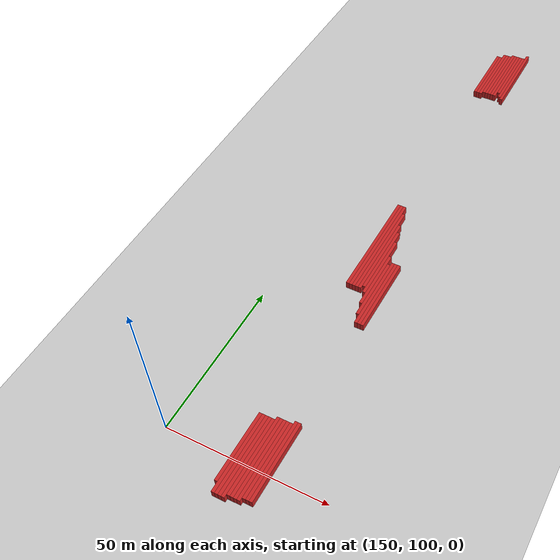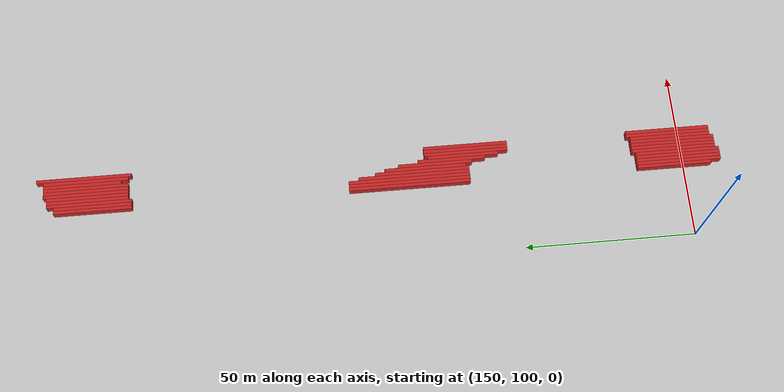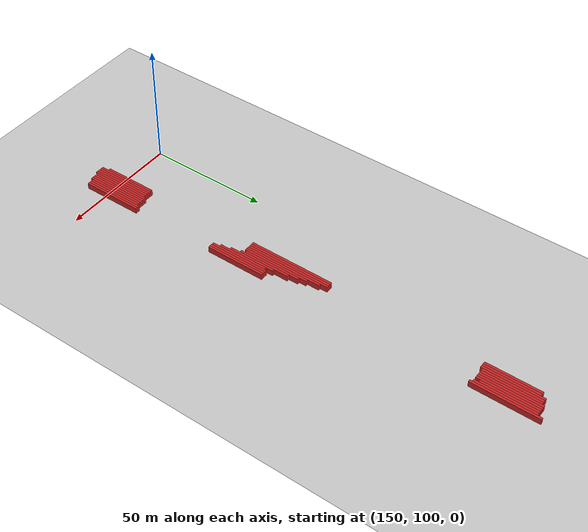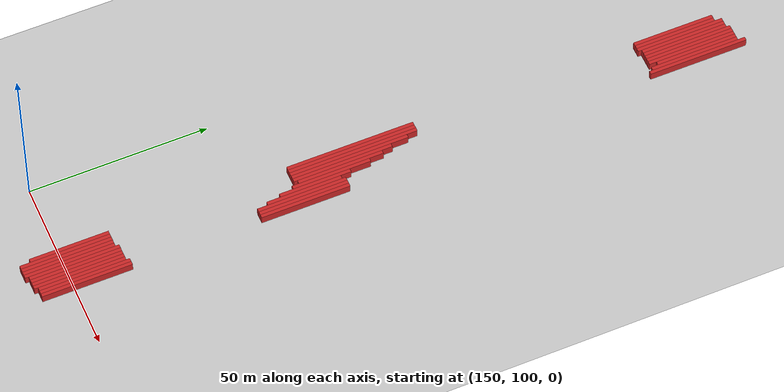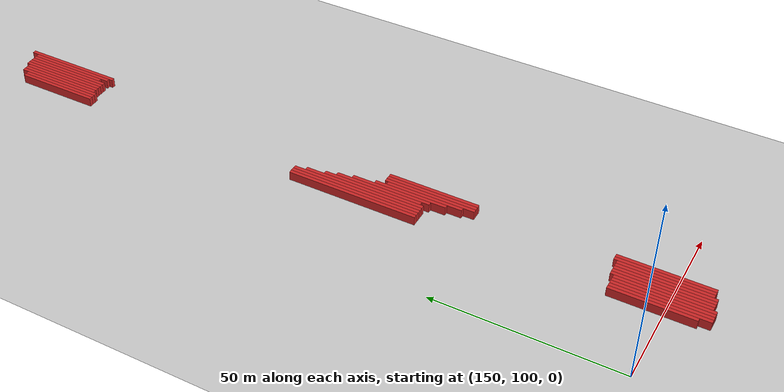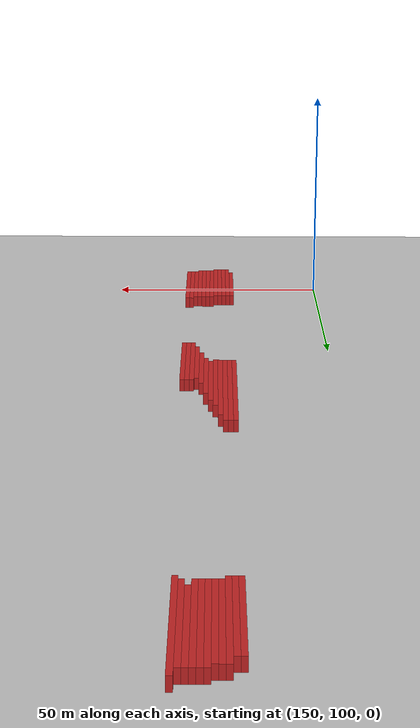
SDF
<sdf version="1.4">
 <world name="1_wall">
  <model name="ground_plane">
   <static>1</static>
   <link name="link">
    <collision name="collision">
     <geometry><plane><normal>0 0 1</normal><size>1000 1000</size></plane></geometry>
     <surface><friction><ode><mu>100</mu><mu2>50</mu2></ode></friction></surface>
    </collision>
    <visual name="visual">
     <cast_shadows>0</cast_shadows>
     <geometry><plane><normal>0 0 1</normal><size>10000 10000</size></plane></geometry>
     <material>
      <script><uri>file://media/materials/scripts/gazebo.material</uri><name>Gazebo/Grey</name></script>
     </material>
    </visual>
    <velocity_decay><linear>0</linear><angular>0</angular></velocity_decay>
   </link>
  </model>
  <model name="Wall_498">
   <static>1</static>
   <link name="Wall_498">
    <collision name="Wall_Collision_498">
     <geometry><box><size>22.0 1.0 2.5</size></box></geometry>
     <pose>0 0 1.25 0 -0 0</pose>
    </collision>
    <visual name="Wall_Visual_498">
     <pose>0 0 1.25 0 -0 0</pose>
     <geometry><box><size>22.0 1.0 2.5</size></box></geometry>
     <material>
      <script><uri>file://media/materials/scripts/gazebo.material</uri><name>Gazebo/Red</name></script>
     </material>
    </visual>
    <velocity_decay><linear>0</linear><angular>0</angular></velocity_decay>
    <pose>171.5 103.0 0 0 0 1.5707963267948966</pose>
   </link>
  </model>
  <model name="Wall_499">
   <static>1</static>
   <link name="Wall_499">
    <collision name="Wall_Collision_499">
     <geometry><box><size>36.0 1.0 2.5</size></box></geometry>
     <pose>0 0 1.25 0 -0 0</pose>
    </collision>
    <visual name="Wall_Visual_499">
     <pose>0 0 1.25 0 -0 0</pose>
     <geometry><box><size>36.0 1.0 2.5</size></box></geometry>
     <material>
      <script><uri>file://media/materials/scripts/gazebo.material</uri><name>Gazebo/Red</name></script>
     </material>
    </visual>
    <velocity_decay><linear>0</linear><angular>0</angular></velocity_decay>
    <pose>171.5 182.0 0 0 0 1.5707963267948966</pose>
   </link>
  </model>
  <model name="Wall_500">
   <static>1</static>
   <link name="Wall_500">
    <collision name="Wall_Collision_500">
     <geometry><box><size>23.0 1.0 2.5</size></box></geometry>
     <pose>0 0 1.25 0 -0 0</pose>
    </collision>
    <visual name="Wall_Visual_500">
     <pose>0 0 1.25 0 -0 0</pose>
     <geometry><box><size>23.0 1.0 2.5</size></box></geometry>
     <material>
      <script><uri>file://media/materials/scripts/gazebo.material</uri><name>Gazebo/Red</name></script>
     </material>
    </visual>
    <velocity_decay><linear>0</linear><angular>0</angular></velocity_decay>
    <pose>171.5 275.5 0 0 0 1.5707963267948966</pose>
   </link>
  </model>
  <model name="Wall_501">
   <static>1</static>
   <link name="Wall_501">
    <collision name="Wall_Collision_501">
     <geometry><box><size>25.0 1.0 2.5</size></box></geometry>
     <pose>0 0 1.25 0 -0 0</pose>
    </collision>
    <visual name="Wall_Visual_501">
     <pose>0 0 1.25 0 -0 0</pose>
     <geometry><box><size>25.0 1.0 2.5</size></box></geometry>
     <material>
      <script><uri>file://media/materials/scripts/gazebo.material</uri><name>Gazebo/Red</name></script>
     </material>
    </visual>
    <velocity_decay><linear>0</linear><angular>0</angular></velocity_decay>
    <pose>172.5 101.5 0 0 0 1.5707963267948966</pose>
   </link>
  </model>
  <model name="Wall_502">
   <static>1</static>
   <link name="Wall_502">
    <collision name="Wall_Collision_502">
     <geometry><box><size>36.0 1.0 2.5</size></box></geometry>
     <pose>0 0 1.25 0 -0 0</pose>
    </collision>
    <visual name="Wall_Visual_502">
     <pose>0 0 1.25 0 -0 0</pose>
     <geometry><box><size>36.0 1.0 2.5</size></box></geometry>
     <material>
      <script><uri>file://media/materials/scripts/gazebo.material</uri><name>Gazebo/Red</name></script>
     </material>
    </visual>
    <velocity_decay><linear>0</linear><angular>0</angular></velocity_decay>
    <pose>172.5 182.0 0 0 0 1.5707963267948966</pose>
   </link>
  </model>
  <model name="Wall_503">
   <static>1</static>
   <link name="Wall_503">
    <collision name="Wall_Collision_503">
     <geometry><box><size>23.0 1.0 2.5</size></box></geometry>
     <pose>0 0 1.25 0 -0 0</pose>
    </collision>
    <visual name="Wall_Visual_503">
     <pose>0 0 1.25 0 -0 0</pose>
     <geometry><box><size>23.0 1.0 2.5</size></box></geometry>
     <material>
      <script><uri>file://media/materials/scripts/gazebo.material</uri><name>Gazebo/Red</name></script>
     </material>
    </visual>
    <velocity_decay><linear>0</linear><angular>0</angular></velocity_decay>
    <pose>172.5 275.5 0 0 0 1.5707963267948966</pose>
   </link>
  </model>
  <model name="Wall_504">
   <static>1</static>
   <link name="Wall_504">
    <collision name="Wall_Collision_504">
     <geometry><box><size>25.0 1.0 2.5</size></box></geometry>
     <pose>0 0 1.25 0 -0 0</pose>
    </collision>
    <visual name="Wall_Visual_504">
     <pose>0 0 1.25 0 -0 0</pose>
     <geometry><box><size>25.0 1.0 2.5</size></box></geometry>
     <material>
      <script><uri>file://media/materials/scripts/gazebo.material</uri><name>Gazebo/Red</name></script>
     </material>
    </visual>
    <velocity_decay><linear>0</linear><angular>0</angular></velocity_decay>
    <pose>173.5 101.5 0 0 0 1.5707963267948966</pose>
   </link>
  </model>
  <model name="Wall_505">
   <static>1</static>
   <link name="Wall_505">
    <collision name="Wall_Collision_505">
     <geometry><box><size>36.0 1.0 2.5</size></box></geometry>
     <pose>0 0 1.25 0 -0 0</pose>
    </collision>
    <visual name="Wall_Visual_505">
     <pose>0 0 1.25 0 -0 0</pose>
     <geometry><box><size>36.0 1.0 2.5</size></box></geometry>
     <material>
      <script><uri>file://media/materials/scripts/gazebo.material</uri><name>Gazebo/Red</name></script>
     </material>
    </visual>
    <velocity_decay><linear>0</linear><angular>0</angular></velocity_decay>
    <pose>173.5 182.0 0 0 0 1.5707963267948966</pose>
   </link>
  </model>
  <model name="Wall_506">
   <static>1</static>
   <link name="Wall_506">
    <collision name="Wall_Collision_506">
     <geometry><box><size>25.0 1.0 2.5</size></box></geometry>
     <pose>0 0 1.25 0 -0 0</pose>
    </collision>
    <visual name="Wall_Visual_506">
     <pose>0 0 1.25 0 -0 0</pose>
     <geometry><box><size>25.0 1.0 2.5</size></box></geometry>
     <material>
      <script><uri>file://media/materials/scripts/gazebo.material</uri><name>Gazebo/Red</name></script>
     </material>
    </visual>
    <velocity_decay><linear>0</linear><angular>0</angular></velocity_decay>
    <pose>173.5 276.5 0 0 0 1.5707963267948966</pose>
   </link>
  </model>
  <model name="Wall_507">
   <static>1</static>
   <link name="Wall_507">
    <collision name="Wall_Collision_507">
     <geometry><box><size>25.0 1.0 2.5</size></box></geometry>
     <pose>0 0 1.25 0 -0 0</pose>
    </collision>
    <visual name="Wall_Visual_507">
     <pose>0 0 1.25 0 -0 0</pose>
     <geometry><box><size>25.0 1.0 2.5</size></box></geometry>
     <material>
      <script><uri>file://media/materials/scripts/gazebo.material</uri><name>Gazebo/Red</name></script>
     </material>
    </visual>
    <velocity_decay><linear>0</linear><angular>0</angular></velocity_decay>
    <pose>174.5 101.5 0 0 0 1.5707963267948966</pose>
   </link>
  </model>
  <model name="Wall_508">
   <static>1</static>
   <link name="Wall_508">
    <collision name="Wall_Collision_508">
     <geometry><box><size>33.0 1.0 2.5</size></box></geometry>
     <pose>0 0 1.25 0 -0 0</pose>
    </collision>
    <visual name="Wall_Visual_508">
     <pose>0 0 1.25 0 -0 0</pose>
     <geometry><box><size>33.0 1.0 2.5</size></box></geometry>
     <material>
      <script><uri>file://media/materials/scripts/gazebo.material</uri><name>Gazebo/Red</name></script>
     </material>
    </visual>
    <velocity_decay><linear>0</linear><angular>0</angular></velocity_decay>
    <pose>174.5 180.5 0 0 0 1.5707963267948966</pose>
   </link>
  </model>
  <model name="Wall_509">
   <static>1</static>
   <link name="Wall_509">
    <collision name="Wall_Collision_509">
     <geometry><box><size>24.0 1.0 2.5</size></box></geometry>
     <pose>0 0 1.25 0 -0 0</pose>
    </collision>
    <visual name="Wall_Visual_509">
     <pose>0 0 1.25 0 -0 0</pose>
     <geometry><box><size>24.0 1.0 2.5</size></box></geometry>
     <material>
      <script><uri>file://media/materials/scripts/gazebo.material</uri><name>Gazebo/Red</name></script>
     </material>
    </visual>
    <velocity_decay><linear>0</linear><angular>0</angular></velocity_decay>
    <pose>174.5 277.0 0 0 0 1.5707963267948966</pose>
   </link>
  </model>
  <model name="Wall_510">
   <static>1</static>
   <link name="Wall_510">
    <collision name="Wall_Collision_510">
     <geometry><box><size>25.0 1.0 2.5</size></box></geometry>
     <pose>0 0 1.25 0 -0 0</pose>
    </collision>
    <visual name="Wall_Visual_510">
     <pose>0 0 1.25 0 -0 0</pose>
     <geometry><box><size>25.0 1.0 2.5</size></box></geometry>
     <material>
      <script><uri>file://media/materials/scripts/gazebo.material</uri><name>Gazebo/Red</name></script>
     </material>
    </visual>
    <velocity_decay><linear>0</linear><angular>0</angular></velocity_decay>
    <pose>175.5 101.5 0 0 0 1.5707963267948966</pose>
   </link>
  </model>
  <model name="Wall_511">
   <static>1</static>
   <link name="Wall_511">
    <collision name="Wall_Collision_511">
     <geometry><box><size>28.0 1.0 2.5</size></box></geometry>
     <pose>0 0 1.25 0 -0 0</pose>
    </collision>
    <visual name="Wall_Visual_511">
     <pose>0 0 1.25 0 -0 0</pose>
     <geometry><box><size>28.0 1.0 2.5</size></box></geometry>
     <material>
      <script><uri>file://media/materials/scripts/gazebo.material</uri><name>Gazebo/Red</name></script>
     </material>
    </visual>
    <velocity_decay><linear>0</linear><angular>0</angular></velocity_decay>
    <pose>175.5 178.0 0 0 0 1.5707963267948966</pose>
   </link>
  </model>
  <model name="Wall_512">
   <static>1</static>
   <link name="Wall_512">
    <collision name="Wall_Collision_512">
     <geometry><box><size>24.0 1.0 2.5</size></box></geometry>
     <pose>0 0 1.25 0 -0 0</pose>
    </collision>
    <visual name="Wall_Visual_512">
     <pose>0 0 1.25 0 -0 0</pose>
     <geometry><box><size>24.0 1.0 2.5</size></box></geometry>
     <material>
      <script><uri>file://media/materials/scripts/gazebo.material</uri><name>Gazebo/Red</name></script>
     </material>
    </visual>
    <velocity_decay><linear>0</linear><angular>0</angular></velocity_decay>
    <pose>175.5 277.0 0 0 0 1.5707963267948966</pose>
   </link>
  </model>
  <model name="Wall_513">
   <static>1</static>
   <link name="Wall_513">
    <collision name="Wall_Collision_513">
     <geometry><box><size>25.0 1.0 2.5</size></box></geometry>
     <pose>0 0 1.25 0 -0 0</pose>
    </collision>
    <visual name="Wall_Visual_513">
     <pose>0 0 1.25 0 -0 0</pose>
     <geometry><box><size>25.0 1.0 2.5</size></box></geometry>
     <material>
      <script><uri>file://media/materials/scripts/gazebo.material</uri><name>Gazebo/Red</name></script>
     </material>
    </visual>
    <velocity_decay><linear>0</linear><angular>0</angular></velocity_decay>
    <pose>176.5 102.5 0 0 0 1.5707963267948966</pose>
   </link>
  </model>
  <model name="Wall_514">
   <static>1</static>
   <link name="Wall_514">
    <collision name="Wall_Collision_514">
     <geometry><box><size>24.0 1.0 2.5</size></box></geometry>
     <pose>0 0 1.25 0 -0 0</pose>
    </collision>
    <visual name="Wall_Visual_514">
     <pose>0 0 1.25 0 -0 0</pose>
     <geometry><box><size>24.0 1.0 2.5</size></box></geometry>
     <material>
      <script><uri>file://media/materials/scripts/gazebo.material</uri><name>Gazebo/Red</name></script>
     </material>
    </visual>
    <velocity_decay><linear>0</linear><angular>0</angular></velocity_decay>
    <pose>176.5 177.0 0 0 0 1.5707963267948966</pose>
   </link>
  </model>
  <model name="Wall_515">
   <static>1</static>
   <link name="Wall_515">
    <collision name="Wall_Collision_515">
     <geometry><box><size>25.0 1.0 2.5</size></box></geometry>
     <pose>0 0 1.25 0 -0 0</pose>
    </collision>
    <visual name="Wall_Visual_515">
     <pose>0 0 1.25 0 -0 0</pose>
     <geometry><box><size>25.0 1.0 2.5</size></box></geometry>
     <material>
      <script><uri>file://media/materials/scripts/gazebo.material</uri><name>Gazebo/Red</name></script>
     </material>
    </visual>
    <velocity_decay><linear>0</linear><angular>0</angular></velocity_decay>
    <pose>176.5 277.5 0 0 0 1.5707963267948966</pose>
   </link>
  </model>
  <model name="Wall_516">
   <static>1</static>
   <link name="Wall_516">
    <collision name="Wall_Collision_516">
     <geometry><box><size>25.0 1.0 2.5</size></box></geometry>
     <pose>0 0 1.25 0 -0 0</pose>
    </collision>
    <visual name="Wall_Visual_516">
     <pose>0 0 1.25 0 -0 0</pose>
     <geometry><box><size>25.0 1.0 2.5</size></box></geometry>
     <material>
      <script><uri>file://media/materials/scripts/gazebo.material</uri><name>Gazebo/Red</name></script>
     </material>
    </visual>
    <velocity_decay><linear>0</linear><angular>0</angular></velocity_decay>
    <pose>177.5 102.5 0 0 0 1.5707963267948966</pose>
   </link>
  </model>
  <model name="Wall_517">
   <static>1</static>
   <link name="Wall_517">
    <collision name="Wall_Collision_517">
     <geometry><box><size>22.0 1.0 2.5</size></box></geometry>
     <pose>0 0 1.25 0 -0 0</pose>
    </collision>
    <visual name="Wall_Visual_517">
     <pose>0 0 1.25 0 -0 0</pose>
     <geometry><box><size>22.0 1.0 2.5</size></box></geometry>
     <material>
      <script><uri>file://media/materials/scripts/gazebo.material</uri><name>Gazebo/Red</name></script>
     </material>
    </visual>
    <velocity_decay><linear>0</linear><angular>0</angular></velocity_decay>
    <pose>177.5 174.0 0 0 0 1.5707963267948966</pose>
   </link>
  </model>
  <model name="Wall_518">
   <static>1</static>
   <link name="Wall_518">
    <collision name="Wall_Collision_518">
     <geometry><box><size>25.0 1.0 2.5</size></box></geometry>
     <pose>0 0 1.25 0 -0 0</pose>
    </collision>
    <visual name="Wall_Visual_518">
     <pose>0 0 1.25 0 -0 0</pose>
     <geometry><box><size>25.0 1.0 2.5</size></box></geometry>
     <material>
      <script><uri>file://media/materials/scripts/gazebo.material</uri><name>Gazebo/Red</name></script>
     </material>
    </visual>
    <velocity_decay><linear>0</linear><angular>0</angular></velocity_decay>
    <pose>177.5 277.5 0 0 0 1.5707963267948966</pose>
   </link>
  </model>
  <model name="Wall_519">
   <static>1</static>
   <link name="Wall_519">
    <collision name="Wall_Collision_519">
     <geometry><box><size>25.0 1.0 2.5</size></box></geometry>
     <pose>0 0 1.25 0 -0 0</pose>
    </collision>
    <visual name="Wall_Visual_519">
     <pose>0 0 1.25 0 -0 0</pose>
     <geometry><box><size>25.0 1.0 2.5</size></box></geometry>
     <material>
      <script><uri>file://media/materials/scripts/gazebo.material</uri><name>Gazebo/Red</name></script>
     </material>
    </visual>
    <velocity_decay><linear>0</linear><angular>0</angular></velocity_decay>
    <pose>178.5 102.5 0 0 0 1.5707963267948966</pose>
   </link>
  </model>
  <model name="Wall_520">
   <static>1</static>
   <link name="Wall_520">
    <collision name="Wall_Collision_520">
     <geometry><box><size>20.0 1.0 2.5</size></box></geometry>
     <pose>0 0 1.25 0 -0 0</pose>
    </collision>
    <visual name="Wall_Visual_520">
     <pose>0 0 1.25 0 -0 0</pose>
     <geometry><box><size>20.0 1.0 2.5</size></box></geometry>
     <material>
      <script><uri>file://media/materials/scripts/gazebo.material</uri><name>Gazebo/Red</name></script>
     </material>
    </visual>
    <velocity_decay><linear>0</linear><angular>0</angular></velocity_decay>
    <pose>178.5 169.0 0 0 0 1.5707963267948966</pose>
   </link>
  </model>
  <model name="Wall_521">
   <static>1</static>
   <link name="Wall_521">
    <collision name="Wall_Collision_521">
     <geometry><box><size>25.0 1.0 2.5</size></box></geometry>
     <pose>0 0 1.25 0 -0 0</pose>
    </collision>
    <visual name="Wall_Visual_521">
     <pose>0 0 1.25 0 -0 0</pose>
     <geometry><box><size>25.0 1.0 2.5</size></box></geometry>
     <material>
      <script><uri>file://media/materials/scripts/gazebo.material</uri><name>Gazebo/Red</name></script>
     </material>
    </visual>
    <velocity_decay><linear>0</linear><angular>0</angular></velocity_decay>
    <pose>178.5 277.5 0 0 0 1.5707963267948966</pose>
   </link>
  </model>
  <model name="Wall_522">
   <static>1</static>
   <link name="Wall_522">
    <collision name="Wall_Collision_522">
     <geometry><box><size>25.0 1.0 2.5</size></box></geometry>
     <pose>0 0 1.25 0 -0 0</pose>
    </collision>
    <visual name="Wall_Visual_522">
     <pose>0 0 1.25 0 -0 0</pose>
     <geometry><box><size>25.0 1.0 2.5</size></box></geometry>
     <material>
      <script><uri>file://media/materials/scripts/gazebo.material</uri><name>Gazebo/Red</name></script>
     </material>
    </visual>
    <velocity_decay><linear>0</linear><angular>0</angular></velocity_decay>
    <pose>179.5 102.5 0 0 0 1.5707963267948966</pose>
   </link>
  </model>
  <model name="Wall_523">
   <static>1</static>
   <link name="Wall_523">
    <collision name="Wall_Collision_523">
     <geometry><box><size>21.0 1.0 2.5</size></box></geometry>
     <pose>0 0 1.25 0 -0 0</pose>
    </collision>
    <visual name="Wall_Visual_523">
     <pose>0 0 1.25 0 -0 0</pose>
     <geometry><box><size>21.0 1.0 2.5</size></box></geometry>
     <material>
      <script><uri>file://media/materials/scripts/gazebo.material</uri><name>Gazebo/Red</name></script>
     </material>
    </visual>
    <velocity_decay><linear>0</linear><angular>0</angular></velocity_decay>
    <pose>179.5 165.5 0 0 0 1.5707963267948966</pose>
   </link>
  </model>
  <model name="Wall_524">
   <static>1</static>
   <link name="Wall_524">
    <collision name="Wall_Collision_524">
     <geometry><box><size>23.0 1.0 2.5</size></box></geometry>
     <pose>0 0 1.25 0 -0 0</pose>
    </collision>
    <visual name="Wall_Visual_524">
     <pose>0 0 1.25 0 -0 0</pose>
     <geometry><box><size>23.0 1.0 2.5</size></box></geometry>
     <material>
      <script><uri>file://media/materials/scripts/gazebo.material</uri><name>Gazebo/Red</name></script>
     </material>
    </visual>
    <velocity_decay><linear>0</linear><angular>0</angular></velocity_decay>
    <pose>179.5 278.5 0 0 0 1.5707963267948966</pose>
   </link>
  </model>
  <model name="Wall_525">
   <static>1</static>
   <link name="Wall_525">
    <collision name="Wall_Collision_525">
     <geometry><box><size>24.0 1.0 2.5</size></box></geometry>
     <pose>0 0 1.25 0 -0 0</pose>
    </collision>
    <visual name="Wall_Visual_525">
     <pose>0 0 1.25 0 -0 0</pose>
     <geometry><box><size>24.0 1.0 2.5</size></box></geometry>
     <material>
      <script><uri>file://media/materials/scripts/gazebo.material</uri><name>Gazebo/Red</name></script>
     </material>
    </visual>
    <velocity_decay><linear>0</linear><angular>0</angular></velocity_decay>
    <pose>180.5 103.0 0 0 0 1.5707963267948966</pose>
   </link>
  </model>
  <model name="Wall_526">
   <static>1</static>
   <link name="Wall_526">
    <collision name="Wall_Collision_526">
     <geometry><box><size>25.0 1.0 2.5</size></box></geometry>
     <pose>0 0 1.25 0 -0 0</pose>
    </collision>
    <visual name="Wall_Visual_526">
     <pose>0 0 1.25 0 -0 0</pose>
     <geometry><box><size>25.0 1.0 2.5</size></box></geometry>
     <material>
      <script><uri>file://media/materials/scripts/gazebo.material</uri><name>Gazebo/Red</name></script>
     </material>
    </visual>
    <velocity_decay><linear>0</linear><angular>0</angular></velocity_decay>
    <pose>180.5 164.5 0 0 0 1.5707963267948966</pose>
   </link>
  </model>
  <model name="Wall_527">
   <static>1</static>
   <link name="Wall_527">
    <collision name="Wall_Collision_527">
     <geometry><box><size>25.0 1.0 2.5</size></box></geometry>
     <pose>0 0 1.25 0 -0 0</pose>
    </collision>
    <visual name="Wall_Visual_527">
     <pose>0 0 1.25 0 -0 0</pose>
     <geometry><box><size>25.0 1.0 2.5</size></box></geometry>
     <material>
      <script><uri>file://media/materials/scripts/gazebo.material</uri><name>Gazebo/Red</name></script>
     </material>
    </visual>
    <velocity_decay><linear>0</linear><angular>0</angular></velocity_decay>
    <pose>180.5 277.5 0 0 0 1.5707963267948966</pose>
   </link>
  </model>
  <model name="Wall_528">
   <static>1</static>
   <link name="Wall_528">
    <collision name="Wall_Collision_528">
     <geometry><box><size>25.0 1.0 2.5</size></box></geometry>
     <pose>0 0 1.25 0 -0 0</pose>
    </collision>
    <visual name="Wall_Visual_528">
     <pose>0 0 1.25 0 -0 0</pose>
     <geometry><box><size>25.0 1.0 2.5</size></box></geometry>
     <material>
      <script><uri>file://media/materials/scripts/gazebo.material</uri><name>Gazebo/Red</name></script>
     </material>
    </visual>
    <velocity_decay><linear>0</linear><angular>0</angular></velocity_decay>
    <pose>181.5 103.5 0 0 0 1.5707963267948966</pose>
   </link>
  </model>
  <model name="Wall_529">
   <static>1</static>
   <link name="Wall_529">
    <collision name="Wall_Collision_529">
     <geometry><box><size>25.0 1.0 2.5</size></box></geometry>
     <pose>0 0 1.25 0 -0 0</pose>
    </collision>
    <visual name="Wall_Visual_529">
     <pose>0 0 1.25 0 -0 0</pose>
     <geometry><box><size>25.0 1.0 2.5</size></box></geometry>
     <material>
      <script><uri>file://media/materials/scripts/gazebo.material</uri><name>Gazebo/Red</name></script>
     </material>
    </visual>
    <velocity_decay><linear>0</linear><angular>0</angular></velocity_decay>
    <pose>181.5 164.5 0 0 0 1.5707963267948966</pose>
   </link>
  </model>
  <model name="Wall_530">
   <static>1</static>
   <link name="Wall_530">
    <collision name="Wall_Collision_530">
     <geometry><box><size>28.0 1.0 2.5</size></box></geometry>
     <pose>0 0 1.25 0 -0 0</pose>
    </collision>
    <visual name="Wall_Visual_530">
     <pose>0 0 1.25 0 -0 0</pose>
     <geometry><box><size>28.0 1.0 2.5</size></box></geometry>
     <material>
      <script><uri>file://media/materials/scripts/gazebo.material</uri><name>Gazebo/Red</name></script>
     </material>
    </visual>
    <velocity_decay><linear>0</linear><angular>0</angular></velocity_decay>
    <pose>181.5 278.0 0 0 0 1.5707963267948966</pose>
   </link>
  </model>
  <model name="Wall_531">
   <static>1</static>
   <link name="Wall_531">
    <collision name="Wall_Collision_531">
     <geometry><box><size>25.0 1.0 2.5</size></box></geometry>
     <pose>0 0 1.25 0 -0 0</pose>
    </collision>
    <visual name="Wall_Visual_531">
     <pose>0 0 1.25 0 -0 0</pose>
     <geometry><box><size>25.0 1.0 2.5</size></box></geometry>
     <material>
      <script><uri>file://media/materials/scripts/gazebo.material</uri><name>Gazebo/Red</name></script>
     </material>
    </visual>
    <velocity_decay><linear>0</linear><angular>0</angular></velocity_decay>
    <pose>182.5 103.5 0 0 0 1.5707963267948966</pose>
   </link>
  </model>
  <model name="Wall_532">
   <static>1</static>
   <link name="Wall_532">
    <collision name="Wall_Collision_532">
     <geometry><box><size>25.0 1.0 2.5</size></box></geometry>
     <pose>0 0 1.25 0 -0 0</pose>
    </collision>
    <visual name="Wall_Visual_532">
     <pose>0 0 1.25 0 -0 0</pose>
     <geometry><box><size>25.0 1.0 2.5</size></box></geometry>
     <material>
      <script><uri>file://media/materials/scripts/gazebo.material</uri><name>Gazebo/Red</name></script>
     </material>
    </visual>
    <velocity_decay><linear>0</linear><angular>0</angular></velocity_decay>
    <pose>182.5 164.5 0 0 0 1.5707963267948966</pose>
   </link>
  </model>
 </world>
</sdf>
